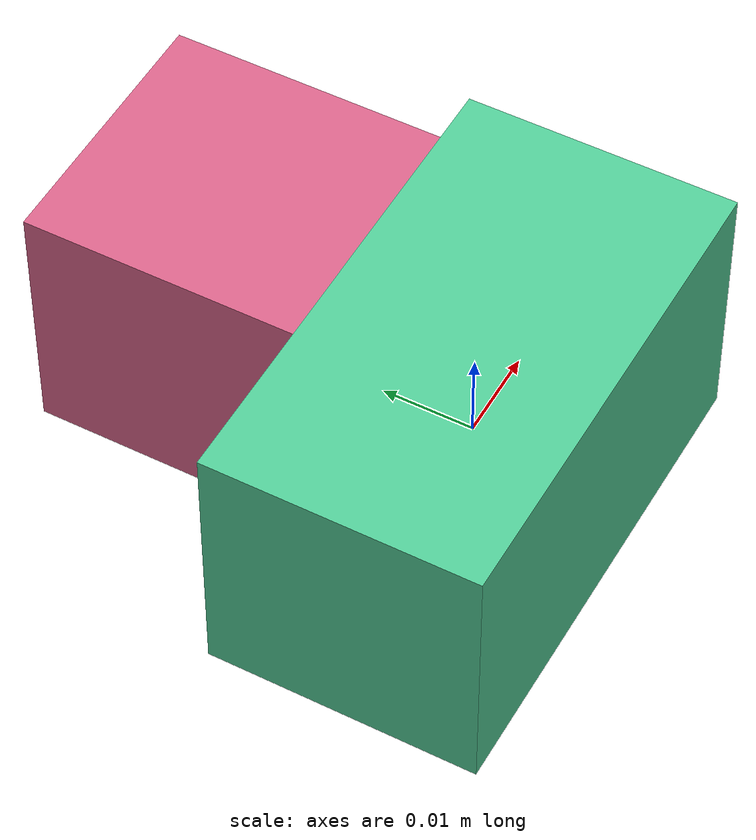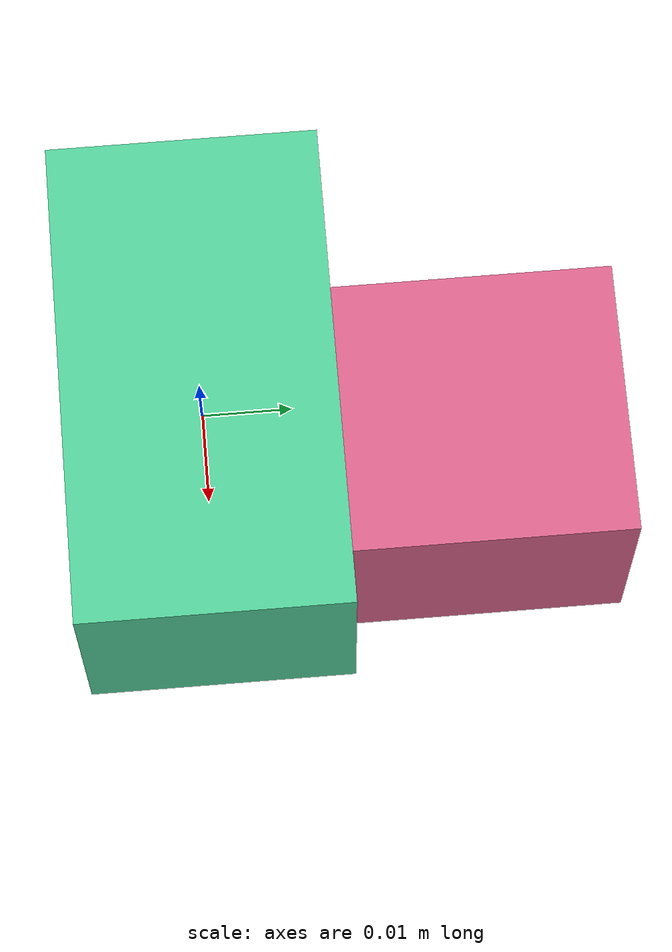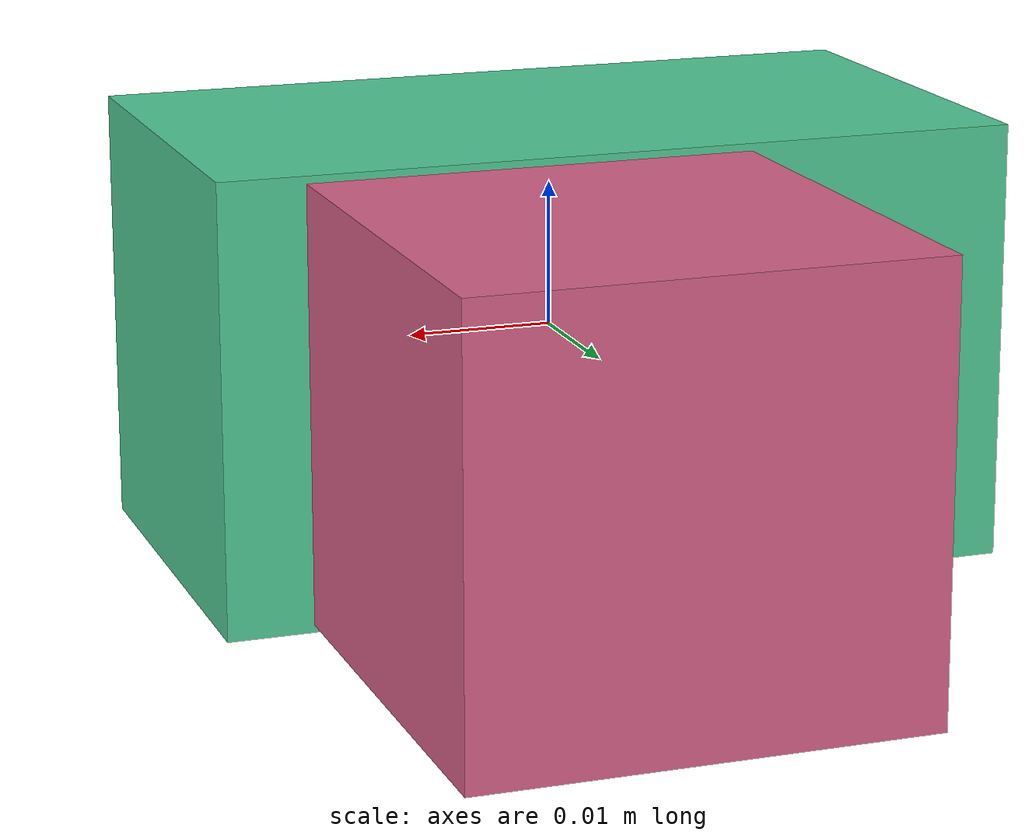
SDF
<sdf version="1.4"><world name="default"><model name="object0"><link name="link1"><pose>0 0 0 0 0 0</pose><inertial><pose>0 0 0 0 0 0</pose><mass>0.02927425398934649</mass><inertia><ixx>4.391138098401973e-06</ixx><ixy>0</ixy><iyy>9.365066983017932e-06</iyy><ixz>0</ixz><iyz>0</iyz><izz>9.365066983017932e-06</izz></inertia></inertial><visual name="link1_visual"><pose>0 0  0 0 0 0</pose><geometry><box><size>0.054211581461752756 0.03 0.03</size></box></geometry><material><diffuse>0.315817479800705 0.7933188741823524 0.5848879625870153 1</diffuse></material></visual><collision><pose>0 0  0 0 0 0</pose><geometry><box><size>0.054211581461752756 0.03 0.03</size></box></geometry></collision></link><link name="link2"><pose>0.006341187503311505 0.017435059527843827 0 0 0 0</pose><inertial><pose>0 0 0 0 0 0</pose><mass>0.0306138655512852</mass><inertia><ixx>1.0344991078283929e-05</ixx><ixy>0</ixy><iyy>4.44156166039896e-06</iyy><ixz>0</ixz><iyz>0</iyz><izz>1.0495509250577748e-05</izz></inertia></inertial><visual name="link2_visual"><pose>0 0  0 0 0 0</pose><geometry><box><size>0.03 0.05669234361349111 0.028999999999999998</size></box></geometry><material><diffuse>0.8377776317225287 0.38273150880319357 0.5318434512227991 1</diffuse></material></visual><collision><pose>0 0  0 0 0 0</pose><geometry><box><size>0.03 0.05669234361349111 0.028999999999999998</size></box></geometry></collision></link><joint name="link_joint_0" type="fixed"><parent>link1</parent><child>link2</child><pose>0 0 0 0 0 0</pose><axis><xyz>0 0 1</xyz></axis></joint></model></world></sdf>
